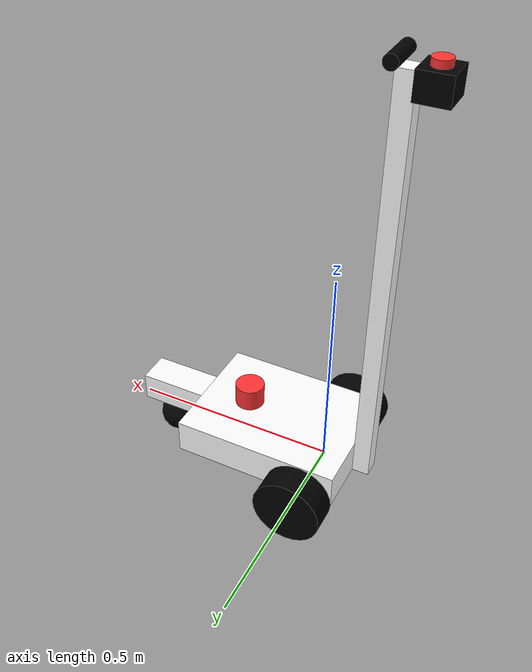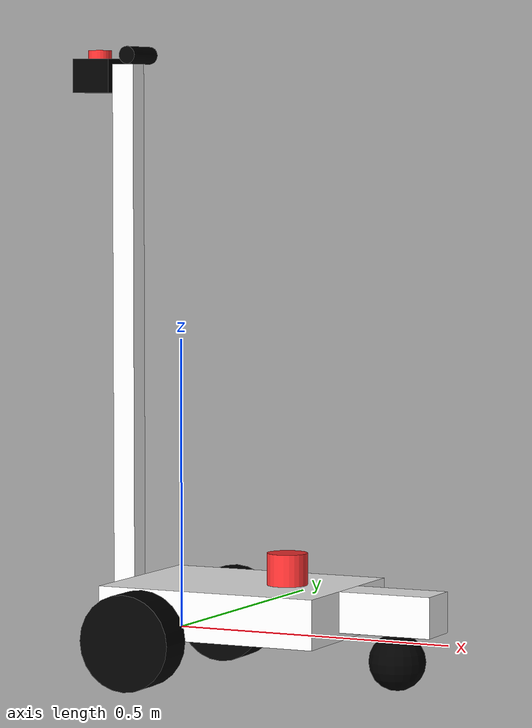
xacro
<?xml version="1.0"?>
<robot xmlns:xacro="http://www.ros.org/wiki/xacro"  name="robot">

    <xacro:arg name="use_ros2_control" default="True"/>
    <xacro:arg name="sim_mode" default="True"/>

    <xacro:include filename="bob_core.xacro" />

    <xacro:if value="$(arg use_ros2_control)">
        <xacro:include filename="$(find bob_description)/ros2_control/bob_ros2_control.xacro"/>
    </xacro:if>

    <xacro:unless value="$(arg use_ros2_control)">
        <xacro:include filename="gazebo_control.xacro"/>
    </xacro:unless>

    <xacro:include filename="camera.xacro"/>
    <xacro:include filename="imu.xacro"/>
    <xacro:include filename="lidar.xacro"/>

</robot>

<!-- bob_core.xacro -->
<robot xmlns:xacro="http://www.ros.org/wiki/xacro" >

    <!-- Body Dimensions -->
    <xacro:property name="main_body_x_dim" value="0.4"/>
    <xacro:property name="main_body_y_dim" value="0.3"/>
    <xacro:property name="main_body_z_dim" value="0.085"/>

    <!-- Front Wheel Mount Dimensions -->
    <xacro:property name="front_wheel_mount_x_dim" value="0.165"/>
    <xacro:property name="front_wheel_mount_y_dim" value="0.08"/>
    <xacro:property name="front_wheel_mount_z_dim" value="0.07"/>

    <!-- Camera Mount Dimensions -->
    <xacro:property name="camera_mount_x_dim" value="0.04"/>
    <xacro:property name="camera_mount_y_dim" value="0.04"/>
    <xacro:property name="camera_mount_z_dim" value="0.975"/>

    <!-- Emergency Button Dimensions -->
    <xacro:property name="emergency_mount_x_dim" value="0.07"/>
    <xacro:property name="emergency_mount_y_dim" value="0.07"/>
    <xacro:property name="emergency_mount_z_dim" value="0.058"/>

    <xacro:property name="emergency_button_radius" value="0.02"/>
    <xacro:property name="emergency_button_length" value="0.03"/>

    <!-- Rear Wheel Dimensions -->
    <xacro:property name="wheel_link_radius" value="0.08255"/>
    <xacro:property name="wheel_link_length" value="0.068"/>
    <xacro:property name="wheel_link_z_location" value="0"/>

    <!-- Front Wheel Dimensions -->
    <xacro:property name="front_wheel_link_radius" value="${(wheel_link_radius+(main_body_z_dim-front_wheel_mount_z_dim))/2}"/>
    <xacro:property name="front_wheel_link_length" value="0.015"/>
    <xacro:property name="front_wheel_link_x_offset" value="0.075"/>
    <xacro:property name="front_wheel_link_x_location" value="${main_body_x_dim+front_wheel_mount_x_dim-wheel_link_radius-front_wheel_link_x_offset}"/>

    <!-- Material Density -->
    <xacro:property name="body_density" value="2710.0"/>
    <xacro:property name="wheel_density" value="2710.0"/>
    <xacro:property name="front_wheel_density" value="2710.0"/>
    <xacro:property name="emergency_button_density" value="2710.0"/>

    <!-- Pi Constant -->
    <xacro:property name="pi_const" value="3.14159265"/>

    <!-- Masses -->
    <xacro:property name="main_body_mass" value="${body_density*main_body_x_dim*main_body_y_dim*main_body_z_dim*0.41}"/>
    <xacro:property name="wheel_mount_mass" value="${body_density*front_wheel_mount_x_dim*front_wheel_mount_y_dim*front_wheel_mount_z_dim*0.41}"/>
    <xacro:property name="camera_mount_mass" value="${body_density*camera_mount_x_dim*camera_mount_y_dim*camera_mount_z_dim}"/>
    <xacro:property name="emergency_mount_mass" value="${emergency_button_density*emergency_mount_x_dim*emergency_mount_y_dim*emergency_mount_z_dim}"/>
    <xacro:property name="emergency_button_mass" value="${emergency_button_density*pi_const*emergency_button_radius*emergency_button_radius*emergency_button_length}"/>

    <xacro:property name="wheel_mass" value="${wheel_density*pi_const*wheel_link_radius*wheel_link_radius*wheel_link_length}"/>
    <xacro:property name="front_wheel_mass" value="${front_wheel_density*pi_const*front_wheel_link_radius*front_wheel_link_radius*front_wheel_link_length}"/>

    <!-- Moments of Inertia of the Wheels -->
    <xacro:property name="Iz_wheel" value="${0.5*wheel_mass*wheel_link_radius*wheel_link_radius}"/>
    <xacro:property name="I_wheel" value="${(1.0/12.0)*wheel_mass*(3.0*wheel_link_radius*wheel_link_radius+wheel_link_length*wheel_link_length)}"/>

    <xacro:property name="Iz_front_wheel" value="${0.5*front_wheel_mass*front_wheel_link_radius*front_wheel_link_radius}"/>
    <xacro:property name="I_front_wheel" value="${(1.0/12.0)*front_wheel_mass*(3.0*front_wheel_link_radius*front_wheel_link_radius+front_wheel_link_length*front_wheel_link_length)}"/>

    <material name="black">
        <color rgba="0 0 0 1"/>
    </material>

    <material name="white">
        <color rgba="1 1 1 1"/>
    </material>

    <material name="red">
        <color rgba="1 0.2 0.2 1"/>
    </material>

    <material name="blue">
        <color rgba="0.2 0.2 1 1"/>
    </material>

    <xacro:macro name="inertia_wheel">
        <inertial>
            <origin rpy="0 0 0" xyz="0 0 0"/>
            <mass value="${wheel_mass}"/>
            <inertia ixx="${I_wheel}" ixy="0.0" ixz="0.0" iyy="${I_wheel}" iyz="0.0" izz="${Iz_wheel}" />
        </inertial>
    </xacro:macro>

    <xacro:macro name="inertia_front_wheel">
        <inertial>
            <origin rpy="0 0 0" xyz="0 0 0"/>
            <mass value="${front_wheel_mass}"/>
            <inertia ixx="${I_front_wheel}" ixy="0.0" ixz="0.0" iyy="${I_front_wheel}" iyz="0.0" izz="${Iz_front_wheel}" />
        </inertial>
    </xacro:macro>

    <!-- BASE LINK -->

   <link name="base_footprint"/>

    <joint name="base_joint" type="fixed">
        <parent link="base_footprint"/>front_
        <child link="base_link"/>front_
        <origin xyz="0 0 0" rpy="0 0 0"/>
    </joint>

     <link name="base_link">
    </link>

    <!-- CHASSIS LINK -->
    <joint name="chassis_joint" type="fixed">
        <parent link="base_link"/>front_
        <child link="chassis"/>front_
        <origin xyz="${-wheel_link_radius} 0 0"/>
    </joint>

    <link name="chassis">

        <visual>
            <origin xyz="${main_body_x_dim*0.5} 0 ${main_body_z_dim*0.5}"/>
            <geometry>
                <box size="${main_body_x_dim} ${main_body_y_dim} ${main_body_z_dim}"/>
            </geometry>
            <material name="white"/>
        </visual>

        <collision>
            <origin xyz="${main_body_x_dim*0.5} 0 ${main_body_z_dim*0.5}"/>
            <geometry>
                <box size="${main_body_x_dim} ${main_body_y_dim} ${main_body_z_dim}"/>
            </geometry>
        </collision>

        <inertial>
            <origin xyz="${main_body_x_dim*0.5} 0 ${main_body_z_dim*0.5}"/>
            <mass value="${main_body_mass}" />
            <inertia ixx="${(1/12)*main_body_mass*(main_body_y_dim*main_body_y_dim+main_body_z_dim*main_body_z_dim)}" ixy="0.0" ixz="0.0" iyy="${(1/12)*main_body_mass*(main_body_x_dim*main_body_x_dim+main_body_z_dim*main_body_z_dim)}"  iyz="0.0" izz="${(1/12)*main_body_mass*(main_body_y_dim*main_body_y_dim+main_body_x_dim*main_body_x_dim)}"  />
        </inertial>

    </link>

    <gazebo reference="chassis">
    <material>Gazebo/White</material>
    </gazebo>

    <!-- CAMERA MOUNT LINK -->
    <joint name="camera_mount_joint" type="fixed">
        <parent link="chassis"/>front_
        <child link="camera_mount"/>front_
        <origin xyz="${-camera_mount_x_dim*0.5} 0 ${camera_mount_z_dim*0.5}"/>
    </joint>

    <link name="camera_mount">
        <visual>
            <geometry>
                <box size="${camera_mount_x_dim} ${camera_mount_y_dim} ${camera_mount_z_dim}"/>
            </geometry>
            <material name="white"/>
        </visual>

        <collision>
            <geometry>
                <box size="${camera_mount_x_dim} ${camera_mount_y_dim} ${camera_mount_z_dim}"/>
            </geometry>
        </collision>

        <inertial>
            <mass value="${camera_mount_mass}" />
            <inertia ixx="${(1/12)*camera_mount_mass*(camera_mount_y_dim*camera_mount_y_dim+camera_mount_z_dim*camera_mount_z_dim)}" ixy="0.0" ixz="0.0" iyy="${(1/12)*camera_mount_mass*(camera_mount_x_dim*camera_mount_x_dim+camera_mount_z_dim*camera_mount_z_dim)}"  iyz="0.0" izz="${(1/12)*camera_mount_mass*(camera_mount_y_dim*camera_mount_y_dim+camera_mount_x_dim*camera_mount_x_dim)}"  />
        </inertial>

    </link>

    <gazebo reference="camera_mount">
        <material>Gazebo/White</material>
    </gazebo>

    <!-- EMERGENCY MOUNT LINK -->
    <joint name="emergency_mount_joint" type="fixed">
        <parent link="camera_mount"/>front_
        <child link="emergency_mount"/>front_
        <origin xyz="${-emergency_mount_x_dim+(emergency_mount_x_dim-camera_mount_x_dim)*0.5} 0 ${camera_mount_z_dim*0.5-0.02}"/>
    </joint>

    <link name="emergency_mount">
        <visual>
            <geometry>
                <box size="${emergency_mount_x_dim} ${emergency_mount_y_dim} ${emergency_mount_z_dim}"/>
            </geometry>
            <material name="black"/>
        </visual>

        <collision>
            <geometry>
                <box size="${emergency_mount_x_dim} ${emergency_mount_y_dim} ${emergency_mount_z_dim}"/>
            </geometry>
        </collision>

        <inertial>
            <mass value="${emergency_mount_mass}" />
            <inertia ixx="${(1/12)*emergency_mount_mass*(emergency_mount_y_dim*emergency_mount_y_dim+emergency_mount_z_dim*emergency_mount_z_dim)}" ixy="0.0" ixz="0.0" iyy="${(1/12)*emergency_mount_mass*(emergency_mount_x_dim*emergency_mount_x_dim+emergency_mount_z_dim*emergency_mount_z_dim)}"  iyz="0.0" izz="${(1/12)*emergency_mount_mass*(emergency_mount_y_dim*emergency_mount_y_dim+emergency_mount_x_dim*emergency_mount_x_dim)}"  />
        </inertial>

    </link>

    <gazebo reference="emergency_mount">
        <material>Gazebo/Black</material>
    </gazebo>

    <!-- EMERGENCY BUTTON LINK -->
    <joint name="emergency_button_joint" type="fixed">
        <parent link="emergency_mount"/>front_
        <child link="emergency_button"/>front_
        <origin xyz="0 0 ${emergency_mount_z_dim*0.5}" />
    </joint>

    <link name="emergency_button">
        <visual>
            <geometry>
                <cylinder radius="${emergency_button_radius}" length="${emergency_button_length}"/>
            </geometry>
            <material name="red"/>
        </visual>

        <collision>
            <geometry>
                <cylinder radius="${emergency_button_radius}" length="${emergency_button_length}"/>
            </geometry>
        </collision>

        <inertial>
            <mass value="${emergency_button_mass}"/>
            <inertia ixx="${(1.0/12.0)*emergency_button_mass*(3.0*emergency_button_radius*emergency_button_radius+emergency_button_length*emergency_button_length)}" ixy="0.0" ixz="0.0" iyy="${(1.0/12.0)*emergency_button_mass*(3.0*emergency_button_radius*emergency_button_radius+emergency_button_length*emergency_button_length)}" iyz="0.0" izz="${0.5*emergency_button_mass*emergency_button_radius*emergency_button_radius}" />
        </inertial>

    </link>

    <gazebo reference="emergency_button">
        <material>Gazebo/Red</material>
    </gazebo>

    <!-- WHEEL MOUNT LINK -->
    <joint name="wheel_mount_joint" type="fixed">
        <parent link="chassis"/>front_
        <child link="wheel_mount"/>front_
        <origin xyz="0 0 0"/>
    </joint>

    <link name="wheel_mount">

        <visual>
            <origin xyz="${main_body_x_dim+front_wheel_mount_x_dim*0.5} 0 ${main_body_z_dim*0.5+(main_body_z_dim-front_wheel_mount_z_dim)*0.5}"/>
            <geometry>
                <box size="${front_wheel_mount_x_dim} ${front_wheel_mount_y_dim} ${front_wheel_mount_z_dim}"/>
            </geometry>
            <material name="white"/>
        </visual>

        <collision>
            <origin xyz="${main_body_x_dim+front_wheel_mount_x_dim*0.5} 0 ${main_body_z_dim*0.5+(main_body_z_dim-front_wheel_mount_z_dim)*0.5}"/>
            <geometry>
                <box size="${front_wheel_mount_x_dim} ${front_wheel_mount_y_dim} ${front_wheel_mount_z_dim}"/>
            </geometry>
        </collision>

        <inertial>
            <origin xyz="${main_body_x_dim+front_wheel_mount_x_dim*0.5} 0 ${main_body_z_dim*0.5+(main_body_z_dim-front_wheel_mount_z_dim)*0.5}"/>
            <mass value="${wheel_mount_mass}" />
            <inertia ixx="${(1/12)*wheel_mount_mass*(front_wheel_mount_y_dim*front_wheel_mount_y_dim+front_wheel_mount_z_dim*front_wheel_mount_z_dim)}" ixy="0.0" ixz="0.0" iyy="${(1/12)*wheel_mount_mass*(front_wheel_mount_x_dim*front_wheel_mount_x_dim+front_wheel_mount_z_dim*front_wheel_mount_z_dim)}"  iyz="0.0" izz="${(1/12)*wheel_mount_mass*(front_wheel_mount_y_dim*front_wheel_mount_y_dim+front_wheel_mount_x_dim*front_wheel_mount_x_dim)}"  />
        </inertial>

    </link>

    <!-- LEFT WHEEL LINK -->

    <joint name="left_wheel_joint" type="continuous">
        <parent link="base_link"/>
        <child link="left_wheel"/>
        <origin xyz="0 ${main_body_y_dim/2+wheel_link_length/2} ${wheel_link_z_location}" rpy="${-pi_const/2} 0 0" />
        <axis xyz="0 0 1"/>
        <limit effort="1000" velocity="1000" />
        <dynamics damping="1.0" friction="1.0"/>
    </joint>

    <link name="left_wheel">
        <visual>
            <geometry>
                <cylinder radius="${wheel_link_radius}" length="${wheel_link_length}"/>
            </geometry>
            <material name="black"/>
        </visual>
        <collision>
            <geometry>
                <cylinder radius="${wheel_link_radius}" length="${wheel_link_length}"/>
            </geometry>
        </collision>

        <xacro:inertia_wheel />
    </link>

    <gazebo reference="left_wheel">
    <mu1>0.2</mu1>
    <mu2>0.2</mu2>
    <material>Gazebo/Black</material>
    </gazebo>

    <!-- RIGHT WHEEL LINK -->

    <joint name="right_wheel_joint" type="continuous">
        <parent link="base_link"/>
        <child link="right_wheel"/>
        <origin xyz="0 ${-main_body_y_dim/2-wheel_link_length/2} ${wheel_link_z_location}" rpy="${pi_const/2} 0 0" />
        <axis xyz="0 0 -1"/>
        <limit effort="1000" velocity="1000" />
        <dynamics damping="1.0" friction="1.0"/>
    </joint>

    <link name="right_wheel">
        <visual>
            <geometry>
                <cylinder radius="${wheel_link_radius}" length="${wheel_link_length}"/>
            </geometry>
            <material name="black"/>
        </visual>
        <collision>
            <geometry>
                <cylinder radius="${wheel_link_radius}" length="${wheel_link_length}"/>
            </geometry>
        </collision>

        <xacro:inertia_wheel />
    </link>

    <gazebo reference="right_wheel">
    <mu1>0.2</mu1>
    <mu2>0.2</mu2>
    <material>Gazebo/Black</material>
    </gazebo>

    <!-- CASTER WHEEL LINK -->

    <joint name="caster_wheel_joint" type="fixed">
        <parent link="base_link"/>
        <child link="caster_wheel"/>
        <origin xyz="${front_wheel_link_x_location} 0 ${(main_body_z_dim-front_wheel_mount_z_dim)-front_wheel_link_radius}"/>
    </joint>

    <link name="caster_wheel">
        <visual>
            <geometry>
                <sphere radius="${front_wheel_link_radius}"/>
            </geometry>
            <material name="black"/>
        </visual>
        <collision>
            <geometry>
                <sphere radius="${front_wheel_link_radius}"/>
            </geometry>
        </collision>
        <xacro:inertia_front_wheel />
    </link>

    <gazebo reference="caster_wheel">
    <mu1>0.001</mu1>
    <mu2>0.001</mu2>
    <material>Gazebo/Black</material>
    </gazebo>

</robot>

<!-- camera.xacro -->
<robot xmlns:xacro="http://www.ros.org/wiki/xacro" >

    <xacro:property name="camera_radius" value="0.015"/>
    <xacro:property name="camera_length" value="0.085"/>

    <xacro:property name="camera_x_offset" value="0.02"/>

    <xacro:property name="camera_density" value="2710.0"/>

    <xacro:property name="camera_mass" value="${camera_density*pi_const*camera_radius*camera_radius*camera_length}"/>

    <!-- CAMERA LINK -->

	<joint name="camera_joint" type="fixed">
        <parent link="camera_mount"/>
        <child link="camera_frame"/>
        <origin xyz="${camera_x_offset} 0 ${camera_mount_z_dim/2+camera_radius}" />
    </joint>

    <link name="camera_frame">
        <visual>
            <origin rpy="${pi_const/2} 0 0"/>
            <geometry>
                <cylinder radius="${camera_radius}" length="${camera_length}"/>
            </geometry>
            <material name="black"/>
        </visual>

        <collision>
            <origin rpy="${pi_const/2} 0 0"/>
            <geometry>
                <cylinder radius="${camera_radius}" length="${camera_length}"/>
            </geometry>
        </collision>

        <inertial>
            <origin rpy="${pi_const/2} 0 0"/>
            <mass value="${camera_mass}"/>
            <inertia ixx="${(1.0/12.0)*camera_mass*(3.0*camera_radius*camera_radius+camera_length*camera_length)}" ixy="0.0" ixz="0.0" iyy="${(1.0/12.0)*camera_mass*(3.0*camera_radius*camera_radius+camera_length*camera_length)}" iyz="0.0" izz="${0.5*camera_mass*camera_radius*camera_radius}" />
        </inertial>
    </link>

    <joint name="camera_optical_joint" type="fixed">
        <parent link="camera_frame"/>
        <child link="camera_optical_frame"/>
        <origin xyz="0 0 0" rpy="${-pi_const/2} 0 ${-pi_const/2}"/>
    </joint>

    <link name="camera_optical_frame"></link>

    <gazebo reference="camera_frame">

        <material>Gazebo/Black</material>

        <sensor name="camera" type="camera">
            <pose> camera_radius 0 0 0 0 0 </pose>
            <visualize>false</visualize>
            <update_rate>10</update_rate>
            <camera>
                <horizontal_fov>1.089</horizontal_fov>
                <image>
                    <format>R8G8B8</format>
                    <width>640</width>
                    <height>480</height>
                </image>
                <clip>
                    <near>0.05</near>
                    <far>8.0</far>
                </clip>
            </camera>

            <plugin name="camera_controller" filename="libgazebo_ros_camera.so">
                <frame_name>camera_optical_frame</frame_name>
            </plugin>
        </sensor>

    </gazebo>

</robot>

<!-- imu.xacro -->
<robot xmlns:xacro="http://www.ros.org/wiki/xacro" >

    <xacro:property name="imu_x_dim" value="0.02"/>
    <xacro:property name="imu_y_dim" value="0.015"/>
    <xacro:property name="imu_z_dim" value="0.001"/>

    <xacro:property name="imu_x_offset" value="0.25"/>
    <xacro:property name="imu_z_offset" value="0.025"/>

    <xacro:property name="imu_density" value="2710.0"/>

    <xacro:property name="imu_mass" value="${imu_density*imu_x_dim*imu_y_dim*imu_z_dim}"/>

    <!-- LIDAR LINK -->

	<joint name="imu_joint" type="fixed">
        <parent link="base_link"/>
        <child link="imu_frame"/>
        <origin xyz="${imu_x_offset-wheel_link_radius} 0 ${imu_z_offset}"/>
    </joint>

    <link name="imu_frame">
        <visual>
            <geometry>
                <box size="${imu_x_dim} ${imu_y_dim} ${imu_z_dim}"/>
            </geometry>
            <material name="blue"/>
        </visual>

        <collision>
            <geometry>
                <box size="${imu_x_dim} ${imu_y_dim} ${imu_z_dim}"/>
            </geometry>
        </collision>
    </link>

    <gazebo reference="imu_frame">

        <material>Gazebo/Blue</material>
        <gravity>true</gravity>

        <sensor name="mpu6050_imu" type="imu">
            <pose> 0 0 0 0 0 0 </pose>
            <always_on>1</always_on>
            <visualize>false</visualize>
            <update_rate>100</update_rate>

            <plugin name="imu_controller" filename="libgazebo_ros_imu_sensor.so">
                <frame_name>imu_frame</frame_name>
                <ros>
                    <remapping>~/out:=imu_broadcaster/imu</remapping>
                </ros>
                <initial_orientation_as_reference>false</initial_orientation_as_reference>
            </plugin>
            <always_on>true</always_on>
            <update_rate>100</update_rate>
            <visualize>true</visualize>
            <imu>
            <angular_velocity>
                <x>
                <noise type="gaussian">
                    <mean>0.0</mean>
                    <stddev>2e-4</stddev>
                </noise>
                </x>
                <y>
                <noise type="gaussian">
                    <mean>0.0</mean>
                    <stddev>2e-4</stddev>
                </noise>
                </y>
                <z>
                <noise type="gaussian">
                    <mean>0.0</mean>
                    <stddev>2e-4</stddev>
                </noise>
                </z>
            </angular_velocity>
            <linear_acceleration>
                <x>
                <noise type="gaussian">
                    <mean>0.0</mean>
                    <stddev>1.7e-2</stddev>
                </noise>
                </x>
                <y>
                <noise type="gaussian">
                    <mean>0.0</mean>
                    <stddev>1.7e-2</stddev>
                </noise>
                </y>
                <z>
                <noise type="gaussian">
                    <mean>0.0</mean>
                    <stddev>1.7e-2</stddev>
                </noise>
                </z>
            </linear_acceleration>
            <orientation>
                <x>
                <noise type="gaussian">
                    <mean>0.0</mean>
                    <stddev>2e-3</stddev>
                    </noise>
                </x>
                <y>
                    <noise type="gaussian">
                    <mean>0.0</mean>
                    <stddev>2e-3</stddev>
                    </noise>
                </y>
                <z>
                    <noise type="gaussian">
                    <mean>0.0</mean>
                    <stddev>2e-3</stddev>
                    </noise>
                </z>
                </orientation>
            </imu>
        </sensor>
    </gazebo>

</robot>

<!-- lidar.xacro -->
<robot xmlns:xacro="http://www.ros.org/wiki/xacro" >

    <xacro:property name="lidar_radius" value="0.035"/>
    <xacro:property name="lidar_length" value="0.055"/>

    <xacro:property name="lidar_x_offset" value="0.28"/>
    <xacro:property name="lidar_x_location" value="${main_body_x_dim+front_wheel_mount_x_dim-lidar_x_offset}"/>

    <xacro:property name="lidar_density" value="2710.0"/>

    <xacro:property name="lidar_mass" value="${lidar_density*pi_const*lidar_radius*lidar_radius*lidar_length}"/>

    <!-- LIDAR LINK -->

	<joint name="lidar_joint" type="fixed">
        <parent link="base_link"/>
        <child link="lidar_frame"/>
        <origin xyz="${lidar_x_location-wheel_link_radius} 0 ${lidar_length*0.5+main_body_z_dim}" rpy="0 0 0"/>
    </joint>

    <link name="lidar_frame">
        <visual>
            <geometry>
                <cylinder radius="${lidar_radius}" length="${lidar_length}"/>
            </geometry>
            <material name="red"/>
        </visual>

        <collision>
            <geometry>
                <cylinder radius="${lidar_radius}" length="${lidar_length}"/>
            </geometry>
        </collision>

        <inertial>
            <mass value="${lidar_mass}"/>
            <inertia ixx="${(1.0/12.0)*lidar_mass*(3.0*lidar_radius*lidar_radius+lidar_length*lidar_length)}" ixy="0.0" ixz="0.0" iyy="${(1.0/12.0)*lidar_mass*(3.0*lidar_radius*lidar_radius+lidar_length*lidar_length)}" iyz="0.0" izz="${0.5*lidar_mass*lidar_radius*lidar_radius}" />
        </inertial>
    </link>

    <gazebo reference="lidar_frame">
        <material>Gazebo/Red</material>

        <sensor name="lidar" type="ray">
            <pose> 0 0 0 0 0 0 </pose>
            <visualize>true</visualize>
            <update_rate>10</update_rate>
            <ray>
                <scan>
                    <horizontal>
                        <samples>360</samples>
                        <min_angle>-3</min_angle>
                        <max_angle>3</max_angle>
                    </horizontal>
                </scan>
                <range>
                    <min>0.15</min>
                    <max>6.0</max>
                    <resolution>0.01500</resolution>
		        </range>
                <noise>
                    <type>gaussian</type>
                    <mean>0.0</mean>
                    <stddev>0.01</stddev>
                </noise>
            </ray>
            <plugin name="laser_controller" filename="libgazebo_ros_ray_sensor.so">
                <ros>
                    <argument>~/out:=scan</argument>
                </ros>
                <output_type>sensor_msgs/LaserScan</output_type>
                <frame_name>lidar_frame</frame_name>
            </plugin>
        </sensor>
    </gazebo>

</robot>
